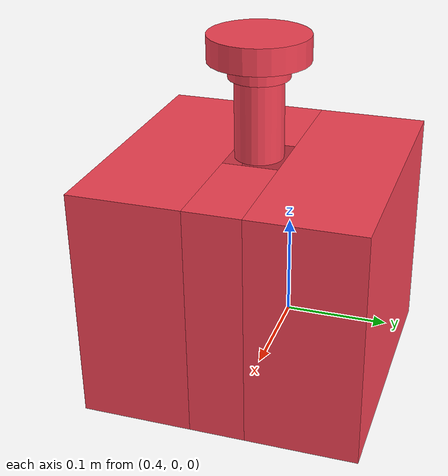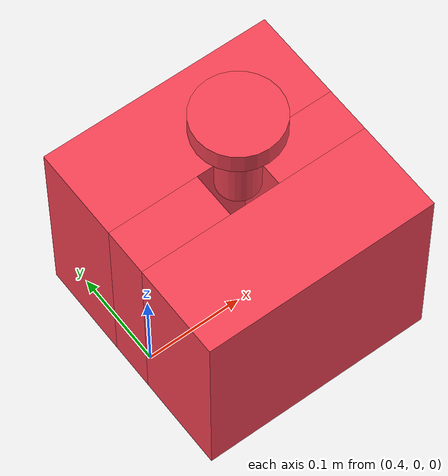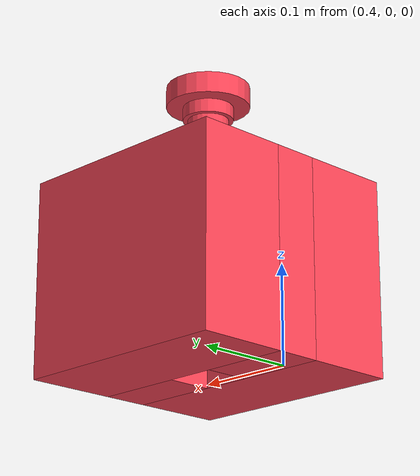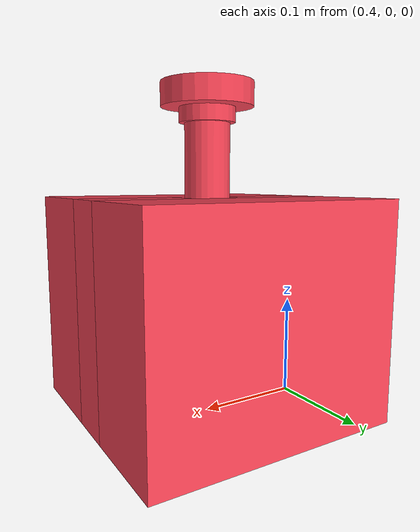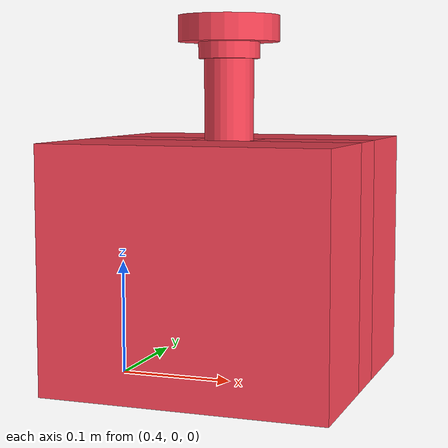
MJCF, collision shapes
<mujoco model="buttonbox">
    <compiler angle="radian" inertiafromgeom="auto" inertiagrouprange="1 5"/>
    <asset>
        <texture name="T_btn" type="cube" file="metaworld/buttonbox/metal1.png"/>

        <material name="btn_col" rgba="0.96 0.26 0.33 0.5" shininess="0" specular="0"/>
        <material name="btn_red" rgba="0.96 0.26 0.33 1" shininess="1" reflectance=".7" specular=".5"/>
        <material name="btn_top" rgba=".7 .7 .7 1" shininess="1" reflectance=".7" specular=".5"/>
        <material name="btn_black" rgba=".15 .15 .15 1" shininess="1" reflectance=".7" specular=".5"/>
        <material name="btn_metal" rgba=".8 .8 .8 1" texture="T_btn" shininess="1" reflectance="1" specular="1"/>

    </asset>
    <default>

        <default class="buttonbox_base">
            <joint armature="0.001" damping="2" limited="true"/>
            <geom conaffinity="0" contype="0" group="1" type="mesh"/>
            <position ctrllimited="true" ctrlrange="0 1.57"/>
            <default class="buttonbox_viz">
                <geom condim="4" type="mesh"/>
            </default>
            <default class="buttonbox_col">
                <geom conaffinity="1" condim="3" contype="1" group="4" material="btn_col" solimp="0.99 0.99 0.01"
                      solref="0.01 1"/>
            </default>
        </default>
    </default>

    <asset>
        <mesh file="metaworld/buttonbox/stopbot.stl" name="stopbot" scale="1.0 1.0 1.0"/>
        <mesh file="metaworld/buttonbox/stopbutton.stl" name="stopbutton" scale="1.0 1.0 1.0"/>
        <mesh file="metaworld/buttonbox/stopbuttonrim.stl" name="stopbuttonrim" scale="1.0 1.0 1.0"/>
        <mesh file="metaworld/buttonbox/stopbuttonrod.stl" name="stopbuttonrod" scale="1.0 1.0 1.0"/>
        <mesh file="metaworld/buttonbox/stoptop.stl" name="stoptop" scale="1.0 1.0 1.0"/>
    </asset>

    <worldbody>
        <body pos="0.5 0 .12" euler="-1.57 0 0">
            <body childclass="buttonbox_base" name="buttonbox">
                <geom material="btn_black" mesh="stopbot" pos="0 -0.06 0"/>
                <geom material="btn_metal" euler="1.57 0 0" mesh="stopbuttonrim" pos="0 -0.089 0"/>
                <geom material="btn_top" mesh="stoptop" pos="0 -0.06 0"/>

                <geom class="buttonbox_col" pos="0 0.012 0.072" size="0.12 0.102 0.048" type="box"/>
                <geom class="buttonbox_col" pos="0 0.012 -0.072" size="0.12 0.102 0.048" type="box"/>
                <geom class="buttonbox_col" pos="-0.073 0.012 0" size="0.047 0.102 0.024" type="box"/>
                <geom class="buttonbox_col" pos="0.073 0.012 0" size="0.047 0.102 0.024" type="box"/>

                <body childclass="buttonbox_base" name="button">
                    <inertial pos="0 -0.1935 0" mass=".01" diaginertia="0.001 0.001 0.001"/>
                    <joint name="btnbox_joint" pos="0 0 0" axis="0 -1 0" type="slide" springref=".5" limited="true"
                           stiffness="0.5" range="-0.06 0" damping="1"/>
                    <geom material="btn_red" euler="1.57 0 0" mesh="stopbutton" pos="0 -0.158 0" name="btnGeom"/>
                    <geom material="btn_black" euler="1.57 0 0" mesh="stopbuttonrod" pos="0 -0.126 0"/>

                    <geom class="buttonbox_col" euler="1.57 0 0" pos="0 -0.128 0" size="0.021 0.039" type="cylinder"/>
                    <geom class="buttonbox_col" euler="1.57 0 0" pos="0 -0.166 0" size="0.026 0.008" type="cylinder"/>
                    <geom class="buttonbox_col" euler="1.57 0 0" pos="0 -0.183 0" size="0.043 0.011" type="cylinder"/>
                </body>
            </body>
        </body>
    </worldbody>
</mujoco>
